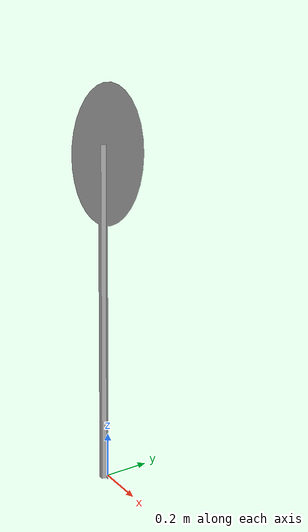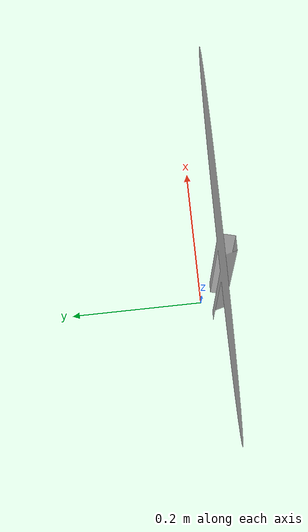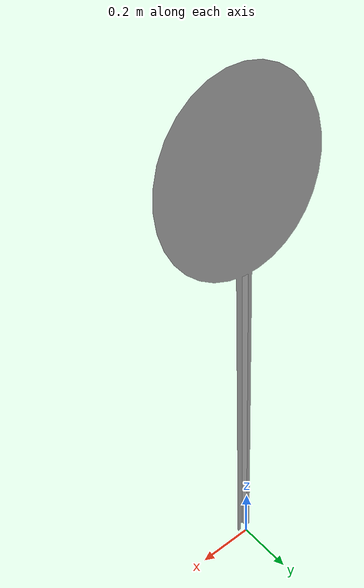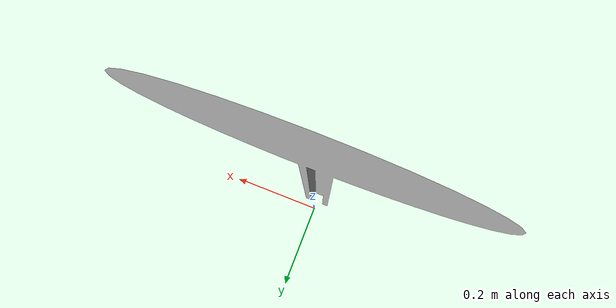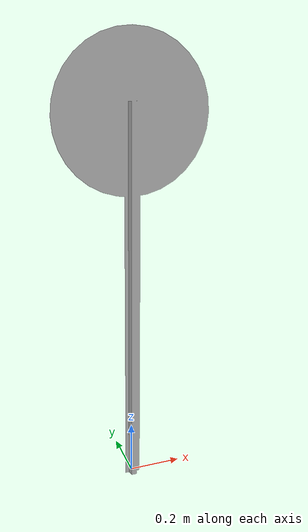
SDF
<?xml version="1.0" ?>
<sdf version="1.5">
  <model name="circle_sign">
    <static>true</static>
    <link name="link">
      <collision name="collision">
        <geometry>
          <mesh>
            <scale>7 7 7</scale>
            <uri>model://circle_sign/meshes/model.dae</uri>
          </mesh>
        </geometry>
      </collision>
      <visual name="visual">
        <geometry>
          <mesh>
            <scale>7 7 7</scale>
            <uri>model://circle_sign/meshes/model.dae</uri>
          </mesh>
        </geometry>
      </visual>
    </link>
  </model>
</sdf>
